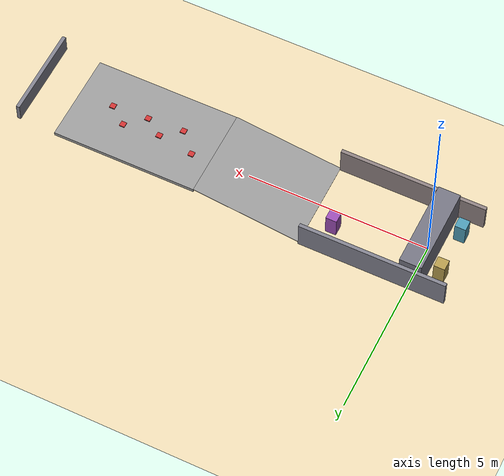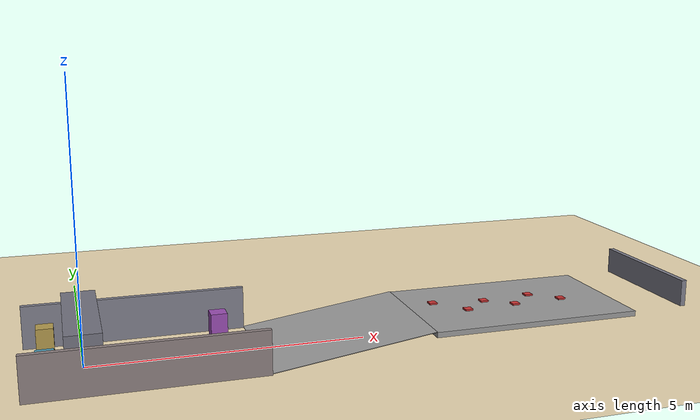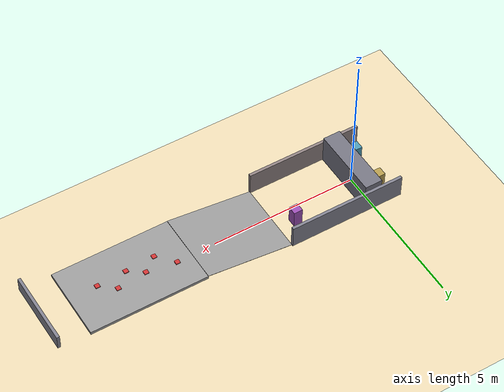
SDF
<?xml version="1.0"?>
<sdf version="1.6">
    <world name='default'>
        <plugin
          filename="gz-sim-physics-system"
          name="gz::sim::systems::Physics">
          <engine>
            <filename>libgz-physics-dartsim-plugin.so</filename>
          </engine>
        </plugin>
        <plugin
            filename="gz-sim-user-commands-system"
            name="gz::sim::systems::UserCommands">
        </plugin>
        <plugin
            filename="gz-sim-scene-broadcaster-system"
            name="gz::sim::systems::SceneBroadcaster">
        </plugin>

        <plugin
            filename="gz-sim-sensors-system"
            name="gz::sim::systems::Sensors">
            <render_engine>ogre2</render_engine>
        </plugin>

        <plugin
            filename="gz-sim-imu-system"
            name="gz::sim::systems::Imu">
        </plugin>

        <gravity>0.0 0.0 -9.8</gravity>

        <physics name="8ms" type="dartsim">
            <max_step_size>0.008</max_step_size>
            <real_time_factor>1.0</real_time_factor>
        </physics>

        <scene>
            <ambient>0.4 0.4 0.4 1</ambient>
            <background>0.7 0.7 0.7 1</background>
            <shadows>false</shadows>
            <grid>false</grid>
            <origin_visual>false</origin_visual>
        </scene>

        <gui>
            <camera name="user_camera">
                <pose>4 -6 4 0 0.46 1.7</pose>
            </camera>
        </gui>

        <model name="ground_plane">
            <static>true</static>
            <link name="link">
                <collision name="collision">
                    <geometry>
                        <plane>
                            <normal>0 0 1</normal>
                            <size>100 100</size>
                        </plane>
                    </geometry>
                </collision>
                <visual name="visual">
                    <geometry>
                        <plane>
                            <normal>0 0 1</normal>
                            <size>100 100</size>
                        </plane>
                    </geometry>
                    <material>
                        <ambient>0.92 0.85 0.7 1</ambient>
                        <diffuse>0.92 0.85 0.7 1</diffuse>
                    </material>
                </visual>
            </link>
        </model>

        <model name="spawn_wall_left">
            <static>true</static>
            <pose>1 1.25 0.4 0 0 0</pose>
            <link name="link">
                <collision name="collision"><geometry><box><size>4.0 0.1 0.8</size></box></geometry></collision>
                <visual name="visual"><geometry><box><size>4.0 0.1 0.8</size></box></geometry>
                    <material><ambient>0.5 0.5 0.55 1</ambient><diffuse>0.5 0.5 0.55 1</diffuse></material>
                </visual>
            </link>
        </model>
        <model name="spawn_wall_right">
            <static>true</static>
            <pose>1 -1.25 0.4 0 0 0</pose>
            <link name="link">
                <collision name="collision"><geometry><box><size>4.0 0.1 0.8</size></box></geometry></collision>
                <visual name="visual"><geometry><box><size>4.0 0.1 0.8</size></box></geometry>
                    <material><ambient>0.55 0.5 0.5 1</ambient><diffuse>0.55 0.5 0.5 1</diffuse></material>
                </visual>
            </link>
        </model>
        <model name="spawn_box_1">
            <static>true</static>
            <pose>-0.6 0.6 0.3 0 0 0</pose>
            <link name="link">
                <collision name="collision"><geometry><box><size>0.3 0.3 0.6</size></box></geometry></collision>
                <visual name="visual"><geometry><box><size>0.3 0.3 0.6</size></box></geometry>
                    <material><ambient>0.7 0.6 0.3 1</ambient><diffuse>0.7 0.6 0.3 1</diffuse></material>
                </visual>
            </link>
        </model>
        <model name="spawn_box_2">
            <static>true</static>
            <pose>-0.6 -0.7 0.3 0 0 0</pose>
            <link name="link">
                <collision name="collision"><geometry><box><size>0.3 0.3 0.6</size></box></geometry></collision>
                <visual name="visual"><geometry><box><size>0.3 0.3 0.6</size></box></geometry>
                    <material><ambient>0.3 0.6 0.7 1</ambient><diffuse>0.3 0.6 0.7 1</diffuse></material>
                </visual>
            </link>
        </model>
        <model name="spawn_box_3">
            <static>true</static>
            <pose>2.4 0.5 0.3 0 0 0</pose>
            <link name="link">
                <collision name="collision"><geometry><box><size>0.3 0.3 0.6</size></box></geometry></collision>
                <visual name="visual"><geometry><box><size>0.3 0.3 0.6</size></box></geometry>
                    <material><ambient>0.6 0.3 0.7 1</ambient><diffuse>0.6 0.3 0.7 1</diffuse></material>
                </visual>
            </link>
        </model>

        <model name="spawn_anchor_wall">
            <static>true</static>
            <pose>0.0 0 0.5 0 0 0</pose>
            <link name="link">
                <collision name="collision"><geometry><box><size>0.6 2.4 1.0</size></box></geometry></collision>
                <visual name="visual"><geometry><box><size>0.6 2.4 1.0</size></box></geometry>
                    <material><ambient>0.45 0.45 0.5 1</ambient><diffuse>0.45 0.45 0.5 1</diffuse></material>
                </visual>
            </link>
        </model>

        <!-- Slight incline ramp: 8 degrees, 3m long, ~0.42m height gain. Starts at
             x=3 (2m flat run-up from spawn at x=1), ends at x~5.97. -->
        <model name="ramp">
            <static>true</static>
            <pose>4.4854 0 0.213711 0 -0.13963 0</pose>
            <link name="link">
                <collision name="collision">
                    <geometry>
                        <box><size>3.0 2.5 0.01</size></box>
                    </geometry>
                </collision>
                <visual name="visual">
                    <geometry>
                        <box><size>3.0 2.5 0.01</size></box>
                    </geometry>
                    <material>
                        <ambient>0.6 0.6 0.6 1</ambient>
                        <diffuse>0.6 0.6 0.6 1</diffuse>
                    </material>
                </visual>
            </link>
        </model>

        <!-- Flat platform at the top of the ramp (z~0.4175), 4m long, for testing
             stable driving at height and as the base for the uneven-terrain bumps. -->
        <model name="ramp_platform">
            <static>true</static>
            <pose>7.97 0 0.3675 0 0 0</pose>
            <link name="link">
                <collision name="collision">
                    <geometry>
                        <box><size>4.0 2.5 0.1</size></box>
                    </geometry>
                </collision>
                <visual name="visual">
                    <geometry>
                        <box><size>4.0 2.5 0.1</size></box>
                    </geometry>
                    <material>
                        <ambient>0.6 0.6 0.6 1</ambient>
                        <diffuse>0.6 0.6 0.6 1</diffuse>
                    </material>
                </visual>
            </link>
        </model>

        <!-- Uneven terrain: scattered ~3cm bumps on the platform (x=6.5..9.4). -->
        <model name="bump_1">
            <static>true</static>
            <pose>6.5 0.3 0.4325 0 0 0</pose>
            <link name="link">
                <collision name="collision"><geometry><box><size>0.15 0.15 0.03</size></box></geometry></collision>
                <visual name="visual"><geometry><box><size>0.15 0.15 0.03</size></box></geometry>
                    <material><ambient>0.8 0.2 0.2 1</ambient><diffuse>0.8 0.2 0.2 1</diffuse></material>
                </visual>
            </link>
        </model>
        <model name="bump_2">
            <static>true</static>
            <pose>7.0 -0.25 0.4325 0 0 0</pose>
            <link name="link">
                <collision name="collision"><geometry><box><size>0.15 0.15 0.03</size></box></geometry></collision>
                <visual name="visual"><geometry><box><size>0.15 0.15 0.03</size></box></geometry>
                    <material><ambient>0.8 0.2 0.2 1</ambient><diffuse>0.8 0.2 0.2 1</diffuse></material>
                </visual>
            </link>
        </model>
        <model name="bump_3">
            <static>true</static>
            <pose>7.5 0.15 0.4325 0 0 0</pose>
            <link name="link">
                <collision name="collision"><geometry><box><size>0.15 0.15 0.03</size></box></geometry></collision>
                <visual name="visual"><geometry><box><size>0.15 0.15 0.03</size></box></geometry>
                    <material><ambient>0.8 0.2 0.2 1</ambient><diffuse>0.8 0.2 0.2 1</diffuse></material>
                </visual>
            </link>
        </model>
        <model name="bump_4">
            <static>true</static>
            <pose>8.0 -0.2 0.4325 0 0 0</pose>
            <link name="link">
                <collision name="collision"><geometry><box><size>0.15 0.15 0.03</size></box></geometry></collision>
                <visual name="visual"><geometry><box><size>0.15 0.15 0.03</size></box></geometry>
                    <material><ambient>0.8 0.2 0.2 1</ambient><diffuse>0.8 0.2 0.2 1</diffuse></material>
                </visual>
            </link>
        </model>
        <model name="bump_5">
            <static>true</static>
            <pose>8.5 0.25 0.4325 0 0 0</pose>
            <link name="link">
                <collision name="collision"><geometry><box><size>0.15 0.15 0.03</size></box></geometry></collision>
                <visual name="visual"><geometry><box><size>0.15 0.15 0.03</size></box></geometry>
                    <material><ambient>0.8 0.2 0.2 1</ambient><diffuse>0.8 0.2 0.2 1</diffuse></material>
                </visual>
            </link>
        </model>
        <model name="bump_6">
            <static>true</static>
            <pose>9.0 -0.15 0.4325 0 0 0</pose>
            <link name="link">
                <collision name="collision"><geometry><box><size>0.15 0.15 0.03</size></box></geometry></collision>
                <visual name="visual"><geometry><box><size>0.15 0.15 0.03</size></box></geometry>
                    <material><ambient>0.8 0.2 0.2 1</ambient><diffuse>0.8 0.2 0.2 1</diffuse></material>
                </visual>
            </link>
        </model>

        <model name="end_wall">
            <static>true</static>
            <pose>11 0 0.6675 0 0 0</pose>
            <link name="link">
                <collision name="collision"><geometry><box><size>0.1 2.5 0.5</size></box></geometry></collision>
                <visual name="visual"><geometry><box><size>0.1 2.5 0.5</size></box></geometry>
                    <material><ambient>0.5 0.5 0.55 1</ambient><diffuse>0.5 0.5 0.55 1</diffuse></material>
                </visual>
            </link>
        </model>

        <light name='sun' type='directional'>
            <cast_shadows>1</cast_shadows>
            <pose>0 0 10 0 -0 0</pose>
            <diffuse>0.8 0.8 0.8 1</diffuse>
            <specular>0.2 0.2 0.2 1</specular>
            <attenuation>
                <range>1000</range>
                <constant>0.9</constant>
                <linear>0.01</linear>
                <quadratic>0.001</quadratic>
            </attenuation>
            <direction>-0.5 0.1 -0.9</direction>
        </light>

    </world>
</sdf>
